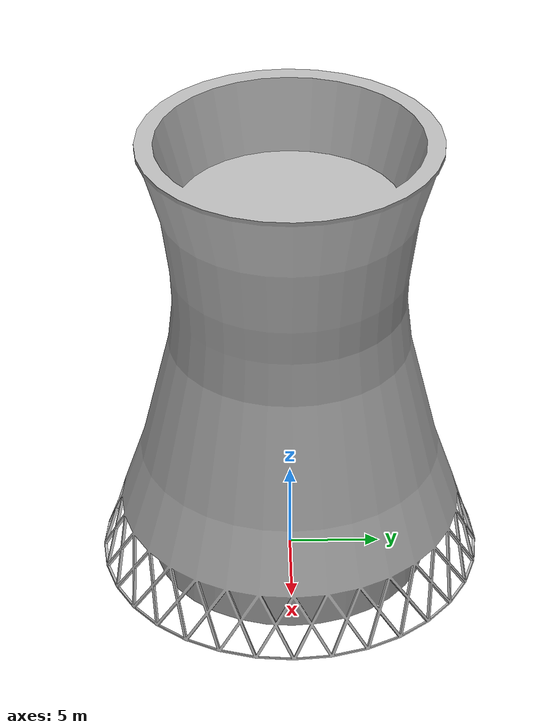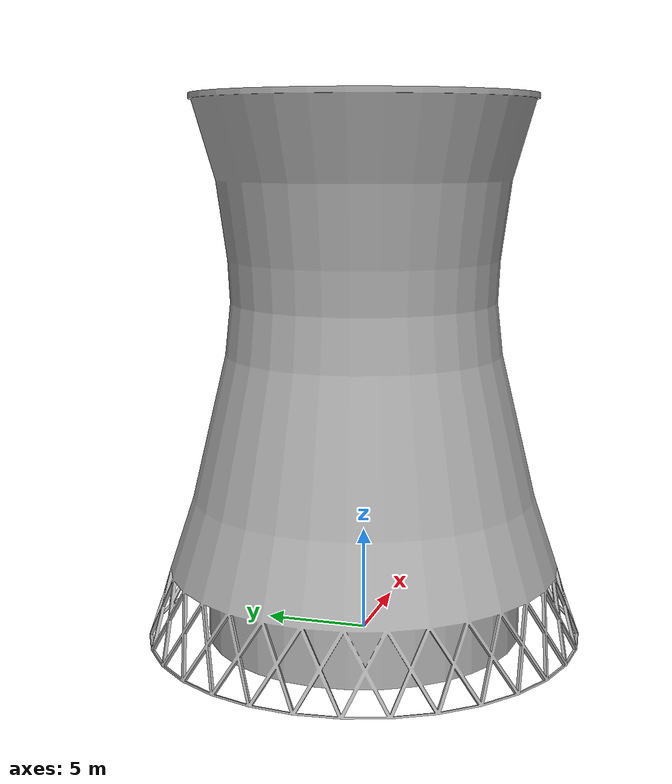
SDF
<?xml version="1.0" ?>
<sdf version="1.6">
  <model name="reactor">
    <static>true</static>
    <link name="link">
      <collision name="collision">
        <geometry>
          <mesh>
            <uri>model://reactor/meshes/reactor.dae</uri>
          </mesh>
        </geometry>
      </collision>
      <visual name="visual">
        <geometry>
          <mesh>
            <uri>model://reactor/meshes/reactor.dae</uri>
          </mesh>
        </geometry>
      </visual>
    </link>
  </model>
</sdf>
